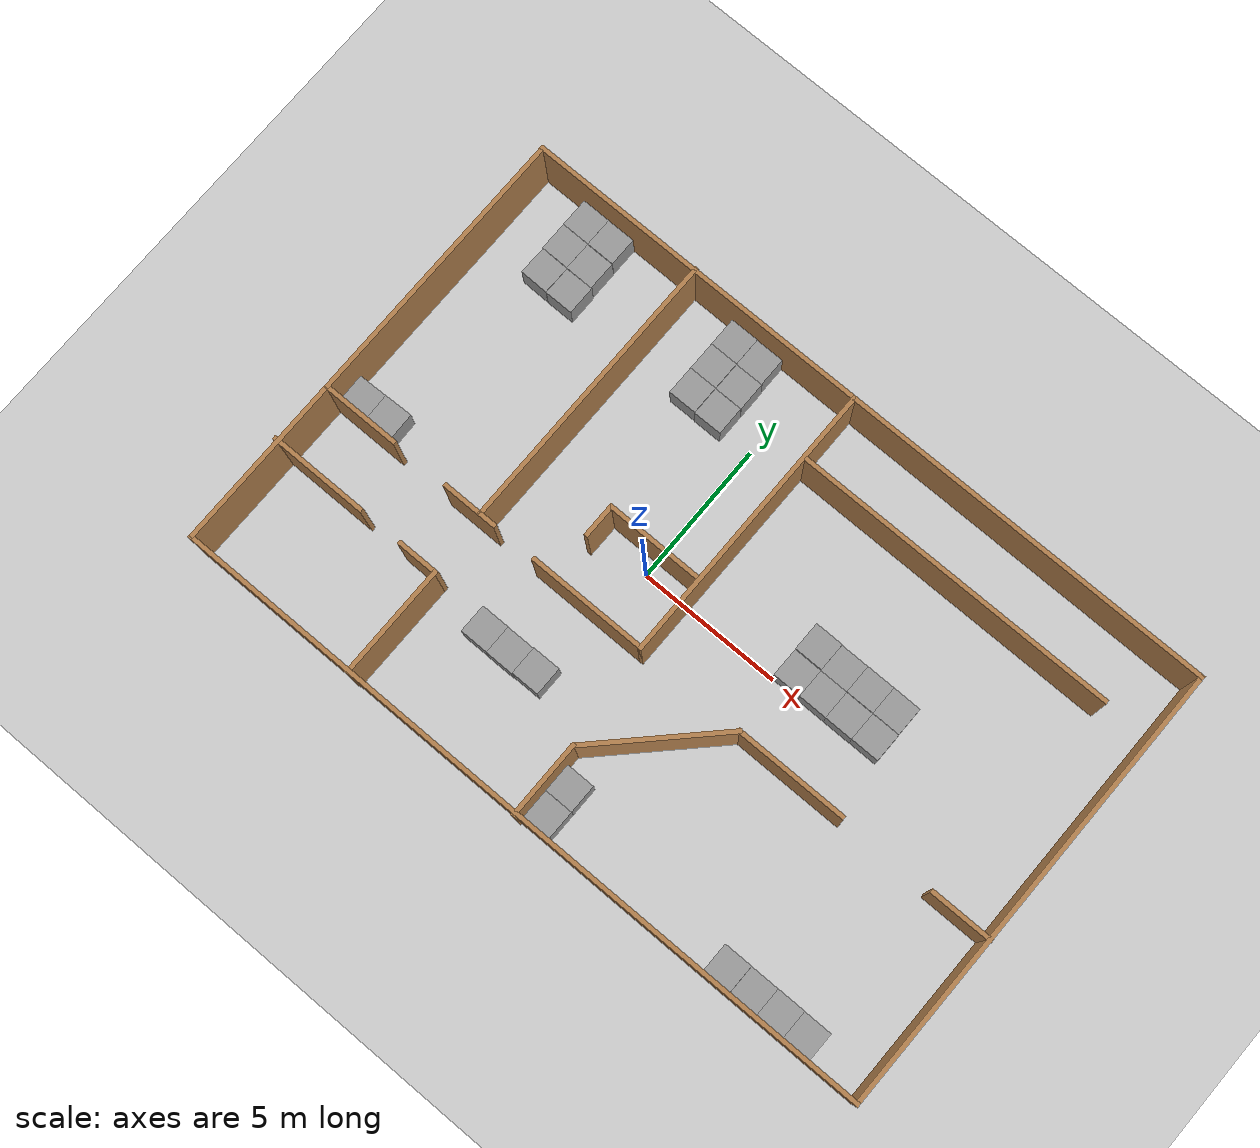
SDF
<sdf version="1.7">
 <world name="default">
  <light name="sun" type="directional">
   <pose>0 0 10 0 -0 0</pose>
   <diffuse>0.8 0.8 0.8 1</diffuse>
   <specular>0.2 0.2 0.2 1</specular>
   <attenuation>
    <range>1000</range>
    <constant>0.9</constant>
    <linear>0.01</linear>
    <quadratic>0.001</quadratic>
   </attenuation>
   <direction>-0.5 0.1 -0.9</direction>
   <spot><inner_angle>0</inner_angle><outer_angle>0</outer_angle><falloff>0</falloff></spot>
  </light>
  <model name="ground_plane">
   <static>1</static>
   <link name="link">
    <collision name="collision">
     <geometry><plane><normal>0 0 1</normal><size>100 100</size></plane></geometry>
     <surface>
      <contact><collide_bitmask>65535</collide_bitmask></contact>
      <friction><ode><mu>100</mu><mu2>50</mu2></ode></friction>
     </surface>
    </collision>
    <visual name="visual">
     <cast_shadows>0</cast_shadows>
     <geometry><plane><normal>0 0 1</normal><size>100 100</size></plane></geometry>
     <material>
      <script><uri>file://media/materials/scripts/gazebo.material</uri><name>Gazebo/Grey</name></script>
     </material>
    </visual>
   </link>
  </model>
  <gravity>0 0 -9.8</gravity>
  <magnetic_field>6e-06 2.3e-05 -4.2e-05</magnetic_field>
  <atmosphere type="adiabatic"/>
  <physics type="ode">
   <max_step_size>0.001</max_step_size>
   <real_time_factor>1</real_time_factor>
   <real_time_update_rate>1000</real_time_update_rate>
  </physics>
  <scene><ambient>0.4 0.4 0.4 1</ambient><background>0.7 0.7 0.7 1</background><shadows>1</shadows></scene>
  <audio><device>default</device></audio>
  <spherical_coordinates>
   <surface_model>EARTH_WGS84</surface_model>
   <latitude_deg>0</latitude_deg>
   <longitude_deg>0</longitude_deg>
   <elevation>0</elevation>
   <heading_deg>0</heading_deg>
  </spherical_coordinates>
  <model name="environment_model">
   <pose>1.9872 -0.178856 0 0 -0 0</pose>
   <link name="Wall_107">
    <collision name="Wall_107_Collision">
     <geometry><box><size>16 0.15 2.5</size></box></geometry>
     <pose>0 0 1.25 0 -0 0</pose>
    </collision>
    <visual name="Wall_107_Visual">
     <pose>0 0 1.25 0 -0 0</pose>
     <geometry><box><size>16 0.15 2.5</size></box></geometry>
     <material>
      <script><uri>file://media/materials/scripts/gazebo.material</uri><name>Gazebo/Wood</name></script>
      <ambient>1 1 1 1</ambient>
     </material>
     <meta><layer>0</layer></meta>
    </visual>
    <pose>-12.6349 0.013322 0 0 -0 1.5708</pose>
   </link>
   <link name="Wall_108">
    <collision name="Wall_108_Collision">
     <geometry><box><size>25.5 0.15 2.5</size></box></geometry>
     <pose>0 0 1.25 0 -0 0</pose>
    </collision>
    <visual name="Wall_108_Visual">
     <pose>0 0 1.25 0 -0 0</pose>
     <geometry><box><size>25.5 0.15 2.5</size></box></geometry>
     <material>
      <script><uri>file://media/materials/scripts/gazebo.material</uri><name>Gazebo/Wood</name></script>
      <ambient>1 1 1 1</ambient>
     </material>
     <meta><layer>0</layer></meta>
    </visual>
    <pose>0.040146 7.93832 0 0 -0 0</pose>
   </link>
   <link name="Wall_109">
    <collision name="Wall_109_Collision">
     <geometry><box><size>16 0.15 2.5</size></box></geometry>
     <pose>0 0 1.25 0 -0 0</pose>
    </collision>
    <visual name="Wall_109_Visual">
     <pose>0 0 1.25 0 -0 0</pose>
     <geometry><box><size>16 0.15 2.5</size></box></geometry>
     <material>
      <script><uri>file://media/materials/scripts/gazebo.material</uri><name>Gazebo/Wood</name></script>
      <ambient>1 1 1 1</ambient>
     </material>
     <meta><layer>0</layer></meta>
    </visual>
    <pose>12.7151 0.013322 0 0 -0 -1.5708</pose>
   </link>
   <link name="Wall_110">
    <collision name="Wall_110_Collision">
     <geometry><box><size>25.5 0.15 2.5</size></box></geometry>
     <pose>0 0 1.25 0 -0 0</pose>
    </collision>
    <visual name="Wall_110_Visual">
     <pose>0 0 1.25 0 -0 0</pose>
     <geometry><box><size>25.5 0.15 2.5</size></box></geometry>
     <material>
      <script><uri>file://media/materials/scripts/gazebo.material</uri><name>Gazebo/Wood</name></script>
      <ambient>1 1 1 1</ambient>
     </material>
     <meta><layer>0</layer></meta>
    </visual>
    <pose>0.040146 -7.91168 0 0 -0 3.14159</pose>
   </link>
   <link name="Wall_112">
    <collision name="Wall_112_Collision">
     <geometry><box><size>2.75 0.15 2.5</size></box></geometry>
     <pose>0 0 1.25 0 -0 0</pose>
    </collision>
    <visual name="Wall_112_Visual">
     <pose>0 0 1.25 0 -0 0</pose>
     <geometry><box><size>2.75 0.15 2.5</size></box></geometry>
     <material>
      <script><uri>file://media/materials/scripts/gazebo.material</uri><name>Gazebo/Wood</name></script>
      <ambient>1 1 1 1</ambient>
     </material>
     <meta><layer>0</layer></meta>
    </visual>
    <pose>-11.3056 -1.91173 0 0 -0 0</pose>
   </link>
   <link name="Wall_114">
    <collision name="Wall_114_Collision">
     <geometry><box><size>2 0.15 2.5</size></box></geometry>
     <pose>0 0 1.25 0 -0 0</pose>
    </collision>
    <visual name="Wall_114_Visual">
     <pose>0 0 1.25 0 -0 0</pose>
     <geometry><box><size>2 0.15 2.5</size></box></geometry>
     <material>
      <script><uri>file://media/materials/scripts/gazebo.material</uri><name>Gazebo/Wood</name></script>
      <ambient>1 1 1 1</ambient>
     </material>
     <meta><layer>0</layer></meta>
    </visual>
    <pose>-6.9806 -1.91173 0 0 -0 0</pose>
   </link>
   <link name="Wall_116">
    <collision name="Wall_116_Collision">
     <geometry><box><size>4.25 0.15 2.5</size></box></geometry>
     <pose>0 0 1.25 0 -0 0</pose>
    </collision>
    <visual name="Wall_116_Visual">
     <pose>0 0 1.25 0 -0 0</pose>
     <geometry><box><size>4.25 0.15 2.5</size></box></geometry>
     <material>
      <script><uri>file://media/materials/scripts/gazebo.material</uri><name>Gazebo/Wood</name></script>
      <ambient>1 1 1 1</ambient>
     </material>
     <meta><layer>0</layer></meta>
    </visual>
    <pose>-2.4056 -1.91173 0 0 -0 0</pose>
   </link>
   <link name="Wall_117">
    <collision name="Wall_117_Collision">
     <geometry><box><size>10 0.15 2.5</size></box></geometry>
     <pose>0 0 1.25 0 -0 0</pose>
    </collision>
    <visual name="Wall_117_Visual">
     <pose>0 0 1.25 0 -0 0</pose>
     <geometry><box><size>10 0.15 2.5</size></box></geometry>
     <material>
      <script><uri>file://media/materials/scripts/gazebo.material</uri><name>Gazebo/Wood</name></script>
      <ambient>1 1 1 1</ambient>
     </material>
     <meta><layer>0</layer></meta>
    </visual>
    <pose>-0.355599 3.01327 0 0 -0 1.5708</pose>
   </link>
   <link name="Wall_119">
    <collision name="Wall_119_Collision">
     <geometry><box><size>10 0.15 2.5</size></box></geometry>
     <pose>0 0 1.25 0 -0 0</pose>
    </collision>
    <visual name="Wall_119_Visual">
     <pose>0 0 1.25 0 -0 0</pose>
     <geometry><box><size>10 0.15 2.5</size></box></geometry>
     <material>
      <script><uri>file://media/materials/scripts/gazebo.material</uri><name>Gazebo/Wood</name></script>
      <ambient>1 1 1 1</ambient>
     </material>
     <meta><layer>0</layer></meta>
    </visual>
    <pose>-6.57906 3.04252 0 0 -0 1.5708</pose>
   </link>
   <link name="Wall_121">
    <collision name="Wall_121_Collision">
     <geometry><box><size>3.5 0.15 2.5</size></box></geometry>
     <pose>0 0 1.25 0 -0 0</pose>
    </collision>
    <visual name="Wall_121_Visual">
     <pose>0 0 1.25 0 -0 0</pose>
     <geometry><box><size>3.5 0.15 2.5</size></box></geometry>
     <material>
      <script><uri>file://media/materials/scripts/gazebo.material</uri><name>Gazebo/Wood</name></script>
      <ambient>1 1 1 1</ambient>
     </material>
     <meta><layer>0</layer></meta>
    </visual>
    <pose>-2.08125 0.750476 0 0 -0 3.14159</pose>
   </link>
   <link name="Wall_122">
    <collision name="Wall_122_Collision">
     <geometry><box><size>1.25 0.15 2.5</size></box></geometry>
     <pose>0 0 1.25 0 -0 0</pose>
    </collision>
    <visual name="Wall_122_Visual">
     <pose>0 0 1.25 0 -0 0</pose>
     <geometry><box><size>1.25 0.15 2.5</size></box></geometry>
     <material>
      <script><uri>file://media/materials/scripts/gazebo.material</uri><name>Gazebo/Wood</name></script>
      <ambient>1 1 1 1</ambient>
     </material>
     <meta><layer>0</layer></meta>
    </visual>
    <pose>-3.75625 0.200476 0 0 -0 -1.5708</pose>
   </link>
   <link name="Wall_124">
    <collision name="Wall_124_Collision">
     <geometry><box><size>4 0.15 2.5</size></box></geometry>
     <pose>0 0 1.25 0 -0 0</pose>
    </collision>
    <visual name="Wall_124_Visual">
     <pose>0 0 1.25 0 -0 0</pose>
     <geometry><box><size>4 0.15 2.5</size></box></geometry>
     <material>
      <script><uri>file://media/materials/scripts/gazebo.material</uri><name>Gazebo/Wood</name></script>
      <ambient>1 1 1 1</ambient>
     </material>
     <meta><layer>0</layer></meta>
    </visual>
    <pose>-6.43279 -6.01327 0 0 -0 1.5708</pose>
   </link>
   <link name="Wall_125">
    <collision name="Wall_125_Collision">
     <geometry><box><size>1.5 0.15 2.5</size></box></geometry>
     <pose>0 0 1.25 0 -0 0</pose>
    </collision>
    <visual name="Wall_125_Visual">
     <pose>0 0 1.25 0 -0 0</pose>
     <geometry><box><size>1.5 0.15 2.5</size></box></geometry>
     <material>
      <script><uri>file://media/materials/scripts/gazebo.material</uri><name>Gazebo/Wood</name></script>
      <ambient>1 1 1 1</ambient>
     </material>
     <meta><layer>0</layer></meta>
    </visual>
    <pose>-7.10779 -4.08827 0 0 -0 3.14159</pose>
   </link>
   <link name="Wall_127">
    <collision name="Wall_127_Collision">
     <geometry><box><size>3.5 0.15 2.5</size></box></geometry>
     <pose>0 0 1.25 0 -0 0</pose>
    </collision>
    <visual name="Wall_127_Visual">
     <pose>0 0 1.25 0 -0 0</pose>
     <geometry><box><size>3.5 0.15 2.5</size></box></geometry>
     <material>
      <script><uri>file://media/materials/scripts/gazebo.material</uri><name>Gazebo/Wood</name></script>
      <ambient>1 1 1 1</ambient>
     </material>
     <meta><layer>0</layer></meta>
    </visual>
    <pose>-11.0578 -4.08827 0 0 -0 3.14159</pose>
   </link>
   <link name="Wall_129">
    <collision name="Wall_129_Collision">
     <geometry><box><size>2.75 0.15 2.5</size></box></geometry>
     <pose>0 0 1.25 0 -0 0</pose>
    </collision>
    <visual name="Wall_129_Visual">
     <pose>0 0 1.25 0 -0 0</pose>
     <geometry><box><size>2.75 0.15 2.5</size></box></geometry>
     <material>
      <script><uri>file://media/materials/scripts/gazebo.material</uri><name>Gazebo/Wood</name></script>
      <ambient>1 1 1 1</ambient>
     </material>
     <meta><layer>0</layer></meta>
    </visual>
    <pose>0.00332 -6.66752 0 0 -0 1.5708</pose>
   </link>
   <link name="Wall_130">
    <collision name="Wall_130_Collision">
     <geometry><box><size>5 0.15 2.5</size></box></geometry>
     <pose>0 0 1.25 0 -0 0</pose>
    </collision>
    <visual name="Wall_130_Visual">
     <pose>0 0 1.25 0 -0 0</pose>
     <geometry><box><size>5 0.15 2.5</size></box></geometry>
     <material>
      <script><uri>file://media/materials/scripts/gazebo.material</uri><name>Gazebo/Wood</name></script>
      <ambient>1 1 1 1</ambient>
     </material>
     <meta><layer>0</layer></meta>
    </visual>
    <pose>1.71805 -3.65279 0 0 -0 0.785398</pose>
   </link>
   <link name="Wall_131">
    <collision name="Wall_131_Collision">
     <geometry><box><size>4 0.15 2.5</size></box></geometry>
     <pose>0 0 1.25 0 -0 0</pose>
    </collision>
    <visual name="Wall_131_Visual">
     <pose>0 0 1.25 0 -0 0</pose>
     <geometry><box><size>4 0.15 2.5</size></box></geometry>
     <material>
      <script><uri>file://media/materials/scripts/gazebo.material</uri><name>Gazebo/Wood</name></script>
      <ambient>1 1 1 1</ambient>
     </material>
     <meta><layer>0</layer></meta>
    </visual>
    <pose>5.35779 -1.93806 0 0 -0 0</pose>
   </link>
   <link name="Wall_133">
    <collision name="Wall_133_Collision">
     <geometry><box><size>2.25 0.15 2.5</size></box></geometry>
     <pose>0 0 1.25 0 -0 0</pose>
    </collision>
    <visual name="Wall_133_Visual">
     <pose>0 0 1.25 0 -0 0</pose>
     <geometry><box><size>2.25 0.15 2.5</size></box></geometry>
     <material>
      <script><uri>file://media/materials/scripts/gazebo.material</uri><name>Gazebo/Wood</name></script>
      <ambient>1 1 1 1</ambient>
     </material>
     <meta><layer>0</layer></meta>
    </visual>
    <pose>11.6828 -1.93806 0 0 -0 0</pose>
   </link>
   <link name="Wall_135">
    <collision name="Wall_135_Collision">
     <geometry><box><size>11.5 0.15 2.5</size></box></geometry>
     <pose>0 0 1.25 0 -0 0</pose>
    </collision>
    <visual name="Wall_135_Visual">
     <pose>0 0 1.25 0 -0 0</pose>
     <geometry><box><size>11.5 0.15 2.5</size></box></geometry>
     <material>
      <script><uri>file://media/materials/scripts/gazebo.material</uri><name>Gazebo/Wood</name></script>
      <ambient>1 1 1 1</ambient>
     </material>
     <meta><layer>0</layer></meta>
    </visual>
    <pose>5.32726 5.57756 0 0 -0 0</pose>
   </link>
   <static>1</static>
  </model>
  <model name="unit_box">
   <pose>5.50666 0.508292 0.5 -0 -0 -0.00334</pose>
   <link name="link">
    <inertial>
     <mass>1</mass>
     <inertia>
      <ixx>0.166667</ixx>
      <ixy>0</ixy>
      <ixz>0</ixz>
      <iyy>0.166667</iyy>
      <iyz>0</iyz>
      <izz>0.166667</izz>
     </inertia>
    </inertial>
    <collision name="collision"><geometry><box><size>1 1 1</size></box></geometry></collision>
    <visual name="visual">
     <geometry><box><size>1 1 1</size></box></geometry>
     <material>
      <script><name>Gazebo/Grey</name><uri>file://media/materials/scripts/gazebo.material</uri></script>
     </material>
    </visual>
   </link>
  </model>
  <model name="unit_box_clone">
   <pose>6.50669 0.502532 0.499995 1e-05 -0 -0.003319</pose>
   <link name="link">
    <inertial>
     <mass>1</mass>
     <inertia>
      <ixx>0.166667</ixx>
      <ixy>0</ixy>
      <ixz>0</ixz>
      <iyy>0.166667</iyy>
      <iyz>0</iyz>
      <izz>0.166667</izz>
     </inertia>
    </inertial>
    <collision name="collision"><geometry><box><size>1 1 1</size></box></geometry></collision>
    <visual name="visual">
     <geometry><box><size>1 1 1</size></box></geometry>
     <material>
      <script><name>Gazebo/Grey</name><uri>file://media/materials/scripts/gazebo.material</uri></script>
     </material>
    </visual>
   </link>
  </model>
  <model name="unit_box_clone_clone">
   <pose>7.50668 0.498417 0.499995 -1e-05 -0 -0.00332</pose>
   <link name="link">
    <inertial>
     <mass>1</mass>
     <inertia>
      <ixx>0.166667</ixx>
      <ixy>0</ixy>
      <ixz>0</ixz>
      <iyy>0.166667</iyy>
      <iyz>0</iyz>
      <izz>0.166667</izz>
     </inertia>
    </inertial>
    <collision name="collision"><geometry><box><size>1 1 1</size></box></geometry></collision>
    <visual name="visual">
     <geometry><box><size>1 1 1</size></box></geometry>
     <material>
      <script><name>Gazebo/Grey</name><uri>file://media/materials/scripts/gazebo.material</uri></script>
     </material>
    </visual>
   </link>
  </model>
  <model name="unit_box_clone_clone_clone">
   <pose>8.50671 0.501232 0.499995 -1e-05 -0 -0.003309</pose>
   <link name="link">
    <inertial>
     <mass>1</mass>
     <inertia>
      <ixx>0.166667</ixx>
      <ixy>0</ixy>
      <ixz>0</ixz>
      <iyy>0.166667</iyy>
      <iyz>0</iyz>
      <izz>0.166667</izz>
     </inertia>
    </inertial>
    <collision name="collision"><geometry><box><size>1 1 1</size></box></geometry></collision>
    <visual name="visual">
     <geometry><box><size>1 1 1</size></box></geometry>
     <material>
      <script><name>Gazebo/Grey</name><uri>file://media/materials/scripts/gazebo.material</uri></script>
     </material>
    </visual>
   </link>
  </model>
  <model name="unit_box_clone_clone_clone_0">
   <pose>8.49949 1.50573 0.499995 -0 1e-05 -0.002456</pose>
   <link name="link">
    <inertial>
     <mass>1</mass>
     <inertia>
      <ixx>0.166667</ixx>
      <ixy>0</ixy>
      <ixz>0</ixz>
      <iyy>0.166667</iyy>
      <iyz>0</iyz>
      <izz>0.166667</izz>
     </inertia>
    </inertial>
    <collision name="collision"><geometry><box><size>1 1 1</size></box></geometry></collision>
    <visual name="visual">
     <geometry><box><size>1 1 1</size></box></geometry>
     <material>
      <script><name>Gazebo/Grey</name><uri>file://media/materials/scripts/gazebo.material</uri></script>
     </material>
    </visual>
   </link>
  </model>
  <model name="unit_box_clone_clone_clone_1">
   <pose>7.49921 1.507 0.499995 -1e-05 -0 -0.002964</pose>
   <link name="link">
    <inertial>
     <mass>1</mass>
     <inertia>
      <ixx>0.166667</ixx>
      <ixy>0</ixy>
      <ixz>0</ixz>
      <iyy>0.166667</iyy>
      <iyz>0</iyz>
      <izz>0.166667</izz>
     </inertia>
    </inertial>
    <collision name="collision"><geometry><box><size>1 1 1</size></box></geometry></collision>
    <visual name="visual">
     <geometry><box><size>1 1 1</size></box></geometry>
     <material>
      <script><name>Gazebo/Grey</name><uri>file://media/materials/scripts/gazebo.material</uri></script>
     </material>
    </visual>
   </link>
  </model>
  <model name="unit_box_clone_clone_clone_2">
   <pose>6.4984 1.50452 0.499995 -0 1e-05 -0.004307</pose>
   <link name="link">
    <inertial>
     <mass>1</mass>
     <inertia>
      <ixx>0.166667</ixx>
      <ixy>0</ixy>
      <ixz>0</ixz>
      <iyy>0.166667</iyy>
      <iyz>0</iyz>
      <izz>0.166667</izz>
     </inertia>
    </inertial>
    <collision name="collision"><geometry><box><size>1 1 1</size></box></geometry></collision>
    <visual name="visual">
     <geometry><box><size>1 1 1</size></box></geometry>
     <material>
      <script><name>Gazebo/Grey</name><uri>file://media/materials/scripts/gazebo.material</uri></script>
     </material>
    </visual>
   </link>
  </model>
  <model name="unit_box_clone_clone_clone_3">
   <pose>5.49675 1.52879 0.499995 0 -1e-05 -0.000861</pose>
   <link name="link">
    <inertial>
     <mass>1</mass>
     <inertia>
      <ixx>0.166667</ixx>
      <ixy>0</ixy>
      <ixz>0</ixz>
      <iyy>0.166667</iyy>
      <iyz>0</iyz>
      <izz>0.166667</izz>
     </inertia>
    </inertial>
    <collision name="collision"><geometry><box><size>1 1 1</size></box></geometry></collision>
    <visual name="visual">
     <geometry><box><size>1 1 1</size></box></geometry>
     <material>
      <script><name>Gazebo/Grey</name><uri>file://media/materials/scripts/gazebo.material</uri></script>
     </material>
    </visual>
   </link>
  </model>
  <model name="unit_box_clone_clone_clone_4">
   <pose>12.4987 -7.51537 0.499995 0 9e-06 -0.0001</pose>
   <link name="link">
    <inertial>
     <mass>1</mass>
     <inertia>
      <ixx>0.166667</ixx>
      <ixy>0</ixy>
      <ixz>0</ixz>
      <iyy>0.166667</iyy>
      <iyz>0</iyz>
      <izz>0.166667</izz>
     </inertia>
    </inertial>
    <collision name="collision"><geometry><box><size>1 1 1</size></box></geometry></collision>
    <visual name="visual">
     <geometry><box><size>1 1 1</size></box></geometry>
     <material>
      <script><name>Gazebo/Grey</name><uri>file://media/materials/scripts/gazebo.material</uri></script>
     </material>
    </visual>
   </link>
  </model>
  <model name="unit_box_clone_clone_clone_5">
   <pose>11.4987 -7.50948 0.499995 0 -9e-06 -0.0001</pose>
   <link name="link">
    <inertial>
     <mass>1</mass>
     <inertia>
      <ixx>0.166667</ixx>
      <ixy>0</ixy>
      <ixz>0</ixz>
      <iyy>0.166667</iyy>
      <iyz>0</iyz>
      <izz>0.166667</izz>
     </inertia>
    </inertial>
    <collision name="collision"><geometry><box><size>1 1 1</size></box></geometry></collision>
    <visual name="visual">
     <geometry><box><size>1 1 1</size></box></geometry>
     <material>
      <script><name>Gazebo/Grey</name><uri>file://media/materials/scripts/gazebo.material</uri></script>
     </material>
    </visual>
   </link>
  </model>
  <model name="unit_box_clone_clone_clone_6">
   <pose>10.4987 -7.51393 0.499995 -1e-05 -0 -6.9e-05</pose>
   <link name="link">
    <inertial>
     <mass>1</mass>
     <inertia>
      <ixx>0.166667</ixx>
      <ixy>0</ixy>
      <ixz>0</ixz>
      <iyy>0.166667</iyy>
      <iyz>0</iyz>
      <izz>0.166667</izz>
     </inertia>
    </inertial>
    <collision name="collision"><geometry><box><size>1 1 1</size></box></geometry></collision>
    <visual name="visual">
     <geometry><box><size>1 1 1</size></box></geometry>
     <material>
      <script><name>Gazebo/Grey</name><uri>file://media/materials/scripts/gazebo.material</uri></script>
     </material>
    </visual>
   </link>
  </model>
  <model name="unit_box_clone_clone_clone_7">
   <pose>9.49224 -7.50807 0.499995 -1e-05 -0 0</pose>
   <link name="link">
    <inertial>
     <mass>1</mass>
     <inertia>
      <ixx>0.166667</ixx>
      <ixy>0</ixy>
      <ixz>0</ixz>
      <iyy>0.166667</iyy>
      <iyz>0</iyz>
      <izz>0.166667</izz>
     </inertia>
    </inertial>
    <collision name="collision"><geometry><box><size>1 1 1</size></box></geometry></collision>
    <visual name="visual">
     <geometry><box><size>1 1 1</size></box></geometry>
     <material>
      <script><name>Gazebo/Grey</name><uri>file://media/materials/scripts/gazebo.material</uri></script>
     </material>
    </visual>
   </link>
  </model>
  <model name="unit_box_clone_clone_clone_8">
   <pose>2.56677 -7.48882 0.499995 1e-05 -0 -0.001814</pose>
   <link name="link">
    <inertial>
     <mass>1</mass>
     <inertia>
      <ixx>0.166667</ixx>
      <ixy>0</ixy>
      <ixz>0</ixz>
      <iyy>0.166667</iyy>
      <iyz>0</iyz>
      <izz>0.166667</izz>
     </inertia>
    </inertial>
    <collision name="collision"><geometry><box><size>1 1 1</size></box></geometry></collision>
    <visual name="visual">
     <geometry><box><size>1 1 1</size></box></geometry>
     <material>
      <script><name>Gazebo/Grey</name><uri>file://media/materials/scripts/gazebo.material</uri></script>
     </material>
    </visual>
   </link>
  </model>
  <model name="unit_box_clone_clone_clone_9">
   <pose>2.56587 -6.48819 0.499995 0 -1e-05 -0.000666</pose>
   <link name="link">
    <inertial>
     <mass>1</mass>
     <inertia>
      <ixx>0.166667</ixx>
      <ixy>0</ixy>
      <ixz>0</ixz>
      <iyy>0.166667</iyy>
      <iyz>0</iyz>
      <izz>0.166667</izz>
     </inertia>
    </inertial>
    <collision name="collision"><geometry><box><size>1 1 1</size></box></geometry></collision>
    <visual name="visual">
     <geometry><box><size>1 1 1</size></box></geometry>
     <material>
      <script><name>Gazebo/Grey</name><uri>file://media/materials/scripts/gazebo.material</uri></script>
     </material>
    </visual>
   </link>
  </model>
  <model name="unit_box_clone_clone_clone_10">
   <pose>-2.51466 7.18379 0.499995 0 -1e-05 0.001258</pose>
   <link name="link">
    <inertial>
     <mass>1</mass>
     <inertia>
      <ixx>0.166667</ixx>
      <ixy>0</ixy>
      <ixz>0</ixz>
      <iyy>0.166667</iyy>
      <iyz>0</iyz>
      <izz>0.166667</izz>
     </inertia>
    </inertial>
    <collision name="collision"><geometry><box><size>1 1 1</size></box></geometry></collision>
    <visual name="visual">
     <geometry><box><size>1 1 1</size></box></geometry>
     <material>
      <script><name>Gazebo/Grey</name><uri>file://media/materials/scripts/gazebo.material</uri></script>
     </material>
    </visual>
   </link>
  </model>
  <model name="unit_box_clone_clone_clone_11">
   <pose>-2.51031 6.18378 0.5 0 -0 0.001279</pose>
   <link name="link">
    <inertial>
     <mass>1</mass>
     <inertia>
      <ixx>0.166667</ixx>
      <ixy>0</ixy>
      <ixz>0</ixz>
      <iyy>0.166667</iyy>
      <iyz>0</iyz>
      <izz>0.166667</izz>
     </inertia>
    </inertial>
    <collision name="collision"><geometry><box><size>1 1 1</size></box></geometry></collision>
    <visual name="visual">
     <geometry><box><size>1 1 1</size></box></geometry>
     <material>
      <script><name>Gazebo/Grey</name><uri>file://media/materials/scripts/gazebo.material</uri></script>
     </material>
    </visual>
   </link>
  </model>
  <model name="unit_box_clone_clone_clone_12">
   <pose>-2.51073 5.18366 0.499995 0 1e-05 0.001474</pose>
   <link name="link">
    <inertial>
     <mass>1</mass>
     <inertia>
      <ixx>0.166667</ixx>
      <ixy>0</ixy>
      <ixz>0</ixz>
      <iyy>0.166667</iyy>
      <iyz>0</iyz>
      <izz>0.166667</izz>
     </inertia>
    </inertial>
    <collision name="collision"><geometry><box><size>1 1 1</size></box></geometry></collision>
    <visual name="visual">
     <geometry><box><size>1 1 1</size></box></geometry>
     <material>
      <script><name>Gazebo/Grey</name><uri>file://media/materials/scripts/gazebo.material</uri></script>
     </material>
    </visual>
   </link>
  </model>
  <model name="unit_box_clone_clone_clone_13">
   <pose>-1.4963 5.1703 0.499995 1e-05 -0 0.002415</pose>
   <link name="link">
    <inertial>
     <mass>1</mass>
     <inertia>
      <ixx>0.166667</ixx>
      <ixy>0</ixy>
      <ixz>0</ixz>
      <iyy>0.166667</iyy>
      <iyz>0</iyz>
      <izz>0.166667</izz>
     </inertia>
    </inertial>
    <collision name="collision"><geometry><box><size>1 1 1</size></box></geometry></collision>
    <visual name="visual">
     <geometry><box><size>1 1 1</size></box></geometry>
     <material>
      <script><name>Gazebo/Grey</name><uri>file://media/materials/scripts/gazebo.material</uri></script>
     </material>
    </visual>
   </link>
  </model>
  <model name="unit_box_clone_clone_clone_14">
   <pose>-1.49565 6.17115 0.499995 -1e-05 0 0.002396</pose>
   <link name="link">
    <inertial>
     <mass>1</mass>
     <inertia>
      <ixx>0.166667</ixx>
      <ixy>0</ixy>
      <ixz>0</ixz>
      <iyy>0.166667</iyy>
      <iyz>0</iyz>
      <izz>0.166667</izz>
     </inertia>
    </inertial>
    <collision name="collision"><geometry><box><size>1 1 1</size></box></geometry></collision>
    <visual name="visual">
     <geometry><box><size>1 1 1</size></box></geometry>
     <material>
      <script><name>Gazebo/Grey</name><uri>file://media/materials/scripts/gazebo.material</uri></script>
     </material>
    </visual>
   </link>
  </model>
  <model name="unit_box_clone_clone_clone_15">
   <pose>-1.5116 7.17208 0.499995 -1e-05 0 0.001891</pose>
   <link name="link">
    <inertial>
     <mass>1</mass>
     <inertia>
      <ixx>0.166667</ixx>
      <ixy>0</ixy>
      <ixz>0</ixz>
      <iyy>0.166667</iyy>
      <iyz>0</iyz>
      <izz>0.166667</izz>
     </inertia>
    </inertial>
    <collision name="collision"><geometry><box><size>1 1 1</size></box></geometry></collision>
    <visual name="visual">
     <geometry><box><size>1 1 1</size></box></geometry>
     <material>
      <script><name>Gazebo/Grey</name><uri>file://media/materials/scripts/gazebo.material</uri></script>
     </material>
    </visual>
   </link>
  </model>
  <model name="unit_box_clone_clone_clone_20">
   <pose>-2.50221 -4.49392 0.499995 -1e-05 -0 0.000132</pose>
   <link name="link">
    <inertial>
     <mass>1</mass>
     <inertia>
      <ixx>0.166667</ixx>
      <ixy>0</ixy>
      <ixz>0</ixz>
      <iyy>0.166667</iyy>
      <iyz>0</iyz>
      <izz>0.166667</izz>
     </inertia>
    </inertial>
    <collision name="collision"><geometry><box><size>1 1 1</size></box></geometry></collision>
    <visual name="visual">
     <geometry><box><size>1 1 1</size></box></geometry>
     <material>
      <script><name>Gazebo/Grey</name><uri>file://media/materials/scripts/gazebo.material</uri></script>
     </material>
    </visual>
   </link>
  </model>
  <model name="unit_box_clone_clone_clone_21">
   <pose>-1.50207 -4.50076 0.499995 1e-05 0 0.000409</pose>
   <link name="link">
    <inertial>
     <mass>1</mass>
     <inertia>
      <ixx>0.166667</ixx>
      <ixy>0</ixy>
      <ixz>0</ixz>
      <iyy>0.166667</iyy>
      <iyz>0</iyz>
      <izz>0.166667</izz>
     </inertia>
    </inertial>
    <collision name="collision"><geometry><box><size>1 1 1</size></box></geometry></collision>
    <visual name="visual">
     <geometry><box><size>1 1 1</size></box></geometry>
     <material>
      <script><name>Gazebo/Grey</name><uri>file://media/materials/scripts/gazebo.material</uri></script>
     </material>
    </visual>
   </link>
  </model>
  <model name="unit_box_clone_clone_clone_22">
   <pose>-0.50199 -4.47702 0.499995 0 -1e-05 0.000406</pose>
   <link name="link">
    <inertial>
     <mass>1</mass>
     <inertia>
      <ixx>0.166667</ixx>
      <ixy>0</ixy>
      <ixz>0</ixz>
      <iyy>0.166667</iyy>
      <iyz>0</iyz>
      <izz>0.166667</izz>
     </inertia>
    </inertial>
    <collision name="collision"><geometry><box><size>1 1 1</size></box></geometry></collision>
    <visual name="visual">
     <geometry><box><size>1 1 1</size></box></geometry>
     <material>
      <script><name>Gazebo/Grey</name><uri>file://media/materials/scripts/gazebo.material</uri></script>
     </material>
    </visual>
   </link>
  </model>
  <model name="unit_box_clone_clone_clone_23">
   <pose>-8.51203 7.18435 0.5 0 -0 -0.000225</pose>
   <link name="link">
    <inertial>
     <mass>1</mass>
     <inertia>
      <ixx>0.166667</ixx>
      <ixy>0</ixy>
      <ixz>0</ixz>
      <iyy>0.166667</iyy>
      <iyz>0</iyz>
      <izz>0.166667</izz>
     </inertia>
    </inertial>
    <collision name="collision"><geometry><box><size>1 1 1</size></box></geometry></collision>
    <visual name="visual">
     <geometry><box><size>1 1 1</size></box></geometry>
     <material>
      <script><name>Gazebo/Grey</name><uri>file://media/materials/scripts/gazebo.material</uri></script>
     </material>
    </visual>
   </link>
  </model>
  <model name="unit_box_clone_clone_clone_24">
   <pose>-7.51162 7.17951 0.499995 -1e-05 -0 -0.000535</pose>
   <link name="link">
    <inertial>
     <mass>1</mass>
     <inertia>
      <ixx>0.166667</ixx>
      <ixy>0</ixy>
      <ixz>0</ixz>
      <iyy>0.166667</iyy>
      <iyz>0</iyz>
      <izz>0.166667</izz>
     </inertia>
    </inertial>
    <collision name="collision"><geometry><box><size>1 1 1</size></box></geometry></collision>
    <visual name="visual">
     <geometry><box><size>1 1 1</size></box></geometry>
     <material>
      <script><name>Gazebo/Grey</name><uri>file://media/materials/scripts/gazebo.material</uri></script>
     </material>
    </visual>
   </link>
  </model>
  <model name="unit_box_clone_clone_clone_25">
   <pose>-8.50372 6.18185 0.499995 0 -1e-05 -0.004908</pose>
   <link name="link">
    <inertial>
     <mass>1</mass>
     <inertia>
      <ixx>0.166667</ixx>
      <ixy>0</ixy>
      <ixz>0</ixz>
      <iyy>0.166667</iyy>
      <iyz>0</iyz>
      <izz>0.166667</izz>
     </inertia>
    </inertial>
    <collision name="collision"><geometry><box><size>1 1 1</size></box></geometry></collision>
    <visual name="visual">
     <geometry><box><size>1 1 1</size></box></geometry>
     <material>
      <script><name>Gazebo/Grey</name><uri>file://media/materials/scripts/gazebo.material</uri></script>
     </material>
    </visual>
   </link>
  </model>
  <model name="unit_box_clone_clone_clone_26">
   <pose>-7.50363 6.1671 0.499995 -1e-05 -0 -0.004894</pose>
   <link name="link">
    <inertial>
     <mass>1</mass>
     <inertia>
      <ixx>0.166667</ixx>
      <ixy>0</ixy>
      <ixz>0</ixz>
      <iyy>0.166667</iyy>
      <iyz>0</iyz>
      <izz>0.166667</izz>
     </inertia>
    </inertial>
    <collision name="collision"><geometry><box><size>1 1 1</size></box></geometry></collision>
    <visual name="visual">
     <geometry><box><size>1 1 1</size></box></geometry>
     <material>
      <script><name>Gazebo/Grey</name><uri>file://media/materials/scripts/gazebo.material</uri></script>
     </material>
    </visual>
   </link>
  </model>
  <model name="unit_box_clone_clone_clone_27">
   <pose>-8.48456 5.17587 0.499995 0 1e-05 -0.016329</pose>
   <link name="link">
    <inertial>
     <mass>1</mass>
     <inertia>
      <ixx>0.166667</ixx>
      <ixy>0</ixy>
      <ixz>0</ixz>
      <iyy>0.166667</iyy>
      <iyz>0</iyz>
      <izz>0.166667</izz>
     </inertia>
    </inertial>
    <collision name="collision"><geometry><box><size>1 1 1</size></box></geometry></collision>
    <visual name="visual">
     <geometry><box><size>1 1 1</size></box></geometry>
     <material>
      <script><name>Gazebo/Grey</name><uri>file://media/materials/scripts/gazebo.material</uri></script>
     </material>
    </visual>
   </link>
  </model>
  <model name="unit_box_clone_clone_clone_28">
   <pose>-7.47508 5.16317 0.499995 0 -1e-05 0.002327</pose>
   <link name="link">
    <inertial>
     <mass>1</mass>
     <inertia>
      <ixx>0.166667</ixx>
      <ixy>0</ixy>
      <ixz>0</ixz>
      <iyy>0.166667</iyy>
      <iyz>0</iyz>
      <izz>0.166667</izz>
     </inertia>
    </inertial>
    <collision name="collision"><geometry><box><size>1 1 1</size></box></geometry></collision>
    <visual name="visual">
     <geometry><box><size>1 1 1</size></box></geometry>
     <material>
      <script><name>Gazebo/Grey</name><uri>file://media/materials/scripts/gazebo.material</uri></script>
     </material>
    </visual>
   </link>
  </model>
  <model name="unit_box_clone_clone_clone_29">
   <pose>-10.0582 -1.49279 0.499995 -1e-05 -0 0.026363</pose>
   <link name="link">
    <inertial>
     <mass>1</mass>
     <inertia>
      <ixx>0.166667</ixx>
      <ixy>0</ixy>
      <ixz>0</ixz>
      <iyy>0.166667</iyy>
      <iyz>0</iyz>
      <izz>0.166667</izz>
     </inertia>
    </inertial>
    <collision name="collision"><geometry><box><size>1 1 1</size></box></geometry></collision>
    <visual name="visual">
     <geometry><box><size>1 1 1</size></box></geometry>
     <material>
      <script><name>Gazebo/Grey</name><uri>file://media/materials/scripts/gazebo.material</uri></script>
     </material>
    </visual>
   </link>
  </model>
  <model name="unit_box_clone_clone_clone_30">
   <pose>-9.05866 -1.46129 0.5 0 -0 0.026403</pose>
   <link name="link">
    <inertial>
     <mass>1</mass>
     <inertia>
      <ixx>0.166667</ixx>
      <ixy>0</ixy>
      <ixz>0</ixz>
      <iyy>0.166667</iyy>
      <iyz>0</iyz>
      <izz>0.166667</izz>
     </inertia>
    </inertial>
    <collision name="collision"><geometry><box><size>1 1 1</size></box></geometry></collision>
    <visual name="visual">
     <geometry><box><size>1 1 1</size></box></geometry>
     <material>
      <script><name>Gazebo/Grey</name><uri>file://media/materials/scripts/gazebo.material</uri></script>
     </material>
    </visual>
   </link>
  </model>
 </world>
</sdf>
